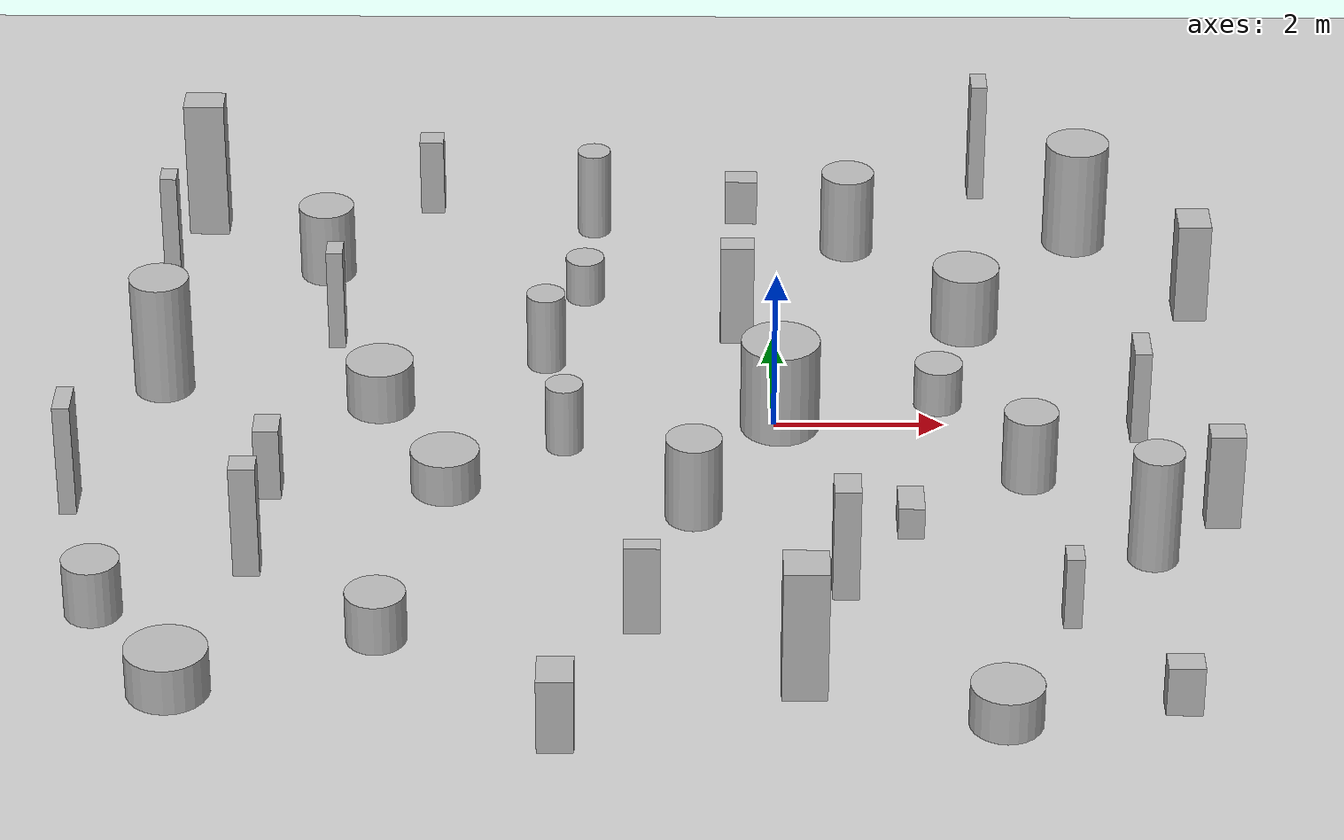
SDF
<sdf version="1.7">
 <world name="default">
  <light name="sun" type="directional">
   <pose>0 0 10 0 -0 0</pose>
   <diffuse>0.8 0.8 0.8 1</diffuse>
   <specular>0.2 0.2 0.2 1</specular>
   <attenuation>
    <range>1000</range>
    <constant>0.9</constant>
    <linear>0.01</linear>
    <quadratic>0.001</quadratic>
   </attenuation>
   <direction>-0.5 0.1 -0.9</direction>
   <spot><inner_angle>0</inner_angle><outer_angle>0</outer_angle><falloff>0</falloff></spot>
  </light>
  <model name="ground_plane">
   <static>1</static>
   <link name="link">
    <collision name="collision">
     <geometry><plane><normal>0 0 1</normal><size>100 100</size></plane></geometry>
     <surface>
      <contact><collide_bitmask>65535</collide_bitmask></contact>
      <friction><ode><mu>100</mu><mu2>50</mu2></ode></friction>
     </surface>
    </collision>
    <visual name="visual">
     <cast_shadows>0</cast_shadows>
     <geometry><plane><normal>0 0 1</normal><size>100 100</size></plane></geometry>
     <material>
      <script><uri>file://media/materials/scripts/gazebo.material</uri><name>Gazebo/Grey</name></script>
     </material>
    </visual>
   </link>
  </model>
  <gravity>0 0 -9.8</gravity>
  <magnetic_field>6e-06 2.3e-05 -4.2e-05</magnetic_field>
  <atmosphere type="adiabatic"/>
  <physics type="ode">
   <max_step_size>0.001</max_step_size>
   <real_time_factor>1</real_time_factor>
   <real_time_update_rate>1000</real_time_update_rate>
   <ode>
    <solver>
     <type>quick</type>
     <iters>50</iters>
     <sor>1.4</sor>
     <use_dynamic_moi_rescaling>0</use_dynamic_moi_rescaling>
    </solver>
    <constraints>
     <cfm>1e-05</cfm>
     <erp>0.2</erp>
     <contact_max_correcting_vel>100</contact_max_correcting_vel>
     <contact_surface_layer>0.001</contact_surface_layer>
    </constraints>
   </ode>
  </physics>
  <scene><ambient>0.4 0.4 0.4 1</ambient><background>0.7 0.7 0.7 1</background><shadows>1</shadows></scene>
  <spherical_coordinates>
   <surface_model>EARTH_WGS84</surface_model>
   <latitude_deg>0</latitude_deg>
   <longitude_deg>0</longitude_deg>
   <elevation>0</elevation>
   <heading_deg>0</heading_deg>
  </spherical_coordinates>
  <model name="cylinder_0_0.7_0.7_2.1">
   <static>1</static>
   <pose>0.97627 4.30379 0.544883 0 -0 0</pose>
   <link name="link">
    <collision name="collision">
     <geometry><cylinder><radius>0.327096</radius><length>1.08977</length></cylinder></geometry>
     <surface><contact><ode><min_depth>0.001</min_depth><max_vel>0</max_vel></ode></contact></surface>
    </collision>
    <visual name="visual">
     <geometry><cylinder><radius>0.327096</radius><length>1.08977</length></cylinder></geometry>
    </visual>
   </link>
  </model>
  <model name="cylinder_1_0.6_0.6_2.9">
   <static>1</static>
   <pose>2.91788 -1.24826 0.463663 0 -0 0</pose>
   <link name="link">
    <collision name="collision">
     <geometry><cylinder><radius>0.315032</radius><length>0.927326</length></cylinder></geometry>
     <surface><contact><ode><min_depth>0.001</min_depth><max_vel>0</max_vel></ode></contact></surface>
    </collision>
    <visual name="visual">
     <geometry><cylinder><radius>0.315032</radius><length>0.927326</length></cylinder></geometry>
    </visual>
   </link>
  </model>
  <model name="cylinder_2_0.4_0.4_2.9">
   <static>1</static>
   <pose>-2.4665 -0.51308 0.425597 0 -0 0</pose>
   <link name="link">
    <collision name="collision">
     <geometry><cylinder><radius>0.221311</radius><length>0.851193</length></cylinder></geometry>
     <surface><contact><ode><min_depth>0.001</min_depth><max_vel>0</max_vel></ode></contact></surface>
    </collision>
    <visual name="visual">
     <geometry><cylinder><radius>0.221311</radius><length>0.851193</length></cylinder></geometry>
    </visual>
   </link>
  </model>
  <model name="cylinder_3_0.9_0.9_2.6">
   <static>1</static>
   <pose>-6.62353 -5.61029 0.278157 0 -0 0</pose>
   <link name="link">
    <collision name="collision">
     <geometry><cylinder><radius>0.461004</radius><length>0.556314</length></cylinder></geometry>
     <surface><contact><ode><min_depth>0.001</min_depth><max_vel>0</max_vel></ode></contact></surface>
    </collision>
    <visual name="visual">
     <geometry><cylinder><radius>0.461004</radius><length>0.556314</length></cylinder></geometry>
    </visual>
   </link>
  </model>
  <model name="cylinder_4_0.5_0.5_2.6">
   <static>1</static>
   <pose>-2.28953 3.06101 0.280529 0 -0 0</pose>
   <link name="link">
    <collision name="collision">
     <geometry><cylinder><radius>0.235482</radius><length>0.561058</length></cylinder></geometry>
     <surface><contact><ode><min_depth>0.001</min_depth><max_vel>0</max_vel></ode></contact></surface>
    </collision>
    <visual name="visual">
     <geometry><cylinder><radius>0.235482</radius><length>0.561058</length></cylinder></geometry>
    </visual>
   </link>
  </model>
  <model name="cylinder_5_0.6_0.6_2.0">
   <static>1</static>
   <pose>-0.959356 -2.04897 0.521848 0 -0 0</pose>
   <link name="link">
    <collision name="collision">
     <geometry><cylinder><radius>0.324399</radius><length>1.0437</length></cylinder></geometry>
     <surface><contact><ode><min_depth>0.001</min_depth><max_vel>0</max_vel></ode></contact></surface>
    </collision>
    <visual name="visual">
     <geometry><cylinder><radius>0.324399</radius><length>1.0437</length></cylinder></geometry>
    </visual>
   </link>
  </model>
  <model name="cylinder_6_0.4_0.4_2.1">
   <static>1</static>
   <pose>-2.20412 4.78437 0.568434 0 -0 0</pose>
   <link name="link">
    <collision name="collision">
     <geometry><cylinder><radius>0.205637</radius><length>1.13687</length></cylinder></geometry>
     <surface><contact><ode><min_depth>0.001</min_depth><max_vel>0</max_vel></ode></contact></surface>
    </collision>
    <visual name="visual">
     <geometry><cylinder><radius>0.205637</radius><length>1.13687</length></cylinder></geometry>
    </visual>
   </link>
  </model>
  <model name="cylinder_7_0.8_0.8_2.9">
   <static>1</static>
   <pose>2.35271 2.24191 0.443748 0 -0 0</pose>
   <link name="link">
    <collision name="collision">
     <geometry><cylinder><radius>0.404546</radius><length>0.887496</length></cylinder></geometry>
     <surface><contact><ode><min_depth>0.001</min_depth><max_vel>0</max_vel></ode></contact></surface>
    </collision>
    <visual name="visual">
     <geometry><cylinder><radius>0.404546</radius><length>0.887496</length></cylinder></geometry>
    </visual>
   </link>
  </model>
  <model name="cylinder_8_0.8_0.8_1.1">
   <static>1</static>
   <pose>-3.81911 -1.45224 0.260225 0 -0 0</pose>
   <link name="link">
    <collision name="collision">
     <geometry><cylinder><radius>0.40003</radius><length>0.520451</length></cylinder></geometry>
     <surface><contact><ode><min_depth>0.001</min_depth><max_vel>0</max_vel></ode></contact></surface>
    </collision>
    <visual name="visual">
     <geometry><cylinder><radius>0.40003</radius><length>0.520451</length></cylinder></geometry>
    </visual>
   </link>
  </model>
  <model name="cylinder_9_0.5_0.5_3.0">
   <static>1</static>
   <pose>-2.72579 1.40393 0.488374 0 -0 0</pose>
   <link name="link">
    <collision name="collision">
     <geometry><cylinder><radius>0.230613</radius><length>0.976748</length></cylinder></geometry>
     <surface><contact><ode><min_depth>0.001</min_depth><max_vel>0</max_vel></ode></contact></surface>
    </collision>
    <visual name="visual">
     <geometry><cylinder><radius>0.230613</radius><length>0.976748</length></cylinder></geometry>
    </visual>
   </link>
  </model>
  <model name="cylinder_10_0.7_0.7_1.5">
   <static>1</static>
   <pose>-4.43923 -4.57596 0.303292 0 -0 0</pose>
   <link name="link">
    <collision name="collision">
     <geometry><cylinder><radius>0.339893</radius><length>0.606583</length></cylinder></geometry>
     <surface><contact><ode><min_depth>0.001</min_depth><max_vel>0</max_vel></ode></contact></surface>
    </collision>
    <visual name="visual">
     <geometry><cylinder><radius>0.339893</radius><length>0.606583</length></cylinder></geometry>
    </visual>
   </link>
  </model>
  <model name="cylinder_11_0.7_0.7_3.0">
   <static>1</static>
   <pose>-5.50653 3.65769 0.476459 0 -0 0</pose>
   <link name="link">
    <collision name="collision">
     <geometry><cylinder><radius>0.340595</radius><length>0.952919</length></cylinder></geometry>
     <surface><contact><ode><min_depth>0.001</min_depth><max_vel>0</max_vel></ode></contact></surface>
    </collision>
    <visual name="visual">
     <geometry><cylinder><radius>0.340595</radius><length>0.952919</length></cylinder></geometry>
    </visual>
   </link>
  </model>
  <model name="cylinder_12_0.6_0.6_1.1">
   <static>1</static>
   <pose>1.94826 0.506577 0.259188 0 -0 0</pose>
   <link name="link">
    <collision name="collision">
     <geometry><cylinder><radius>0.284842</radius><length>0.578376</length></cylinder></geometry>
     <surface><contact><ode><min_depth>0.001</min_depth><max_vel>0</max_vel></ode></contact></surface>
    </collision>
    <visual name="visual">
     <geometry><cylinder><radius>0.284842</radius><length>0.578376</length></cylinder></geometry>
    </visual>
   </link>
  </model>
  <model name="cylinder_13_0.6_0.6_1.6">
   <static>1</static>
   <pose>-7.59607 -4.0772 0.349832 0 -0 0</pose>
   <link name="link">
    <collision name="collision">
     <geometry><cylinder><radius>0.324279</radius><length>0.696636</length></cylinder></geometry>
     <surface><contact><ode><min_depth>0.001</min_depth><max_vel>0</max_vel></ode></contact></surface>
    </collision>
    <visual name="visual">
     <geometry><cylinder><radius>0.324279</radius><length>0.696636</length></cylinder></geometry>
    </visual>
   </link>
  </model>
  <model name="cylinder_14_0.7_0.7_1.5">
   <static>1</static>
   <pose>-7.27922 0.815102 0.753895 0 -0 0</pose>
   <link name="link">
    <collision name="collision">
     <geometry><cylinder><radius>0.356974</radius><length>1.50779</length></cylinder></geometry>
     <surface><contact><ode><min_depth>0.001</min_depth><max_vel>0</max_vel></ode></contact></surface>
    </collision>
    <visual name="visual">
     <geometry><cylinder><radius>0.356974</radius><length>1.50779</length></cylinder></geometry>
    </visual>
   </link>
  </model>
  <model name="cylinder_15_0.8_0.8_1.6">
   <static>1</static>
   <pose>-4.66936 0.389155 0.318569 0 -0 0</pose>
   <link name="link">
    <collision name="collision">
     <geometry><cylinder><radius>0.400223</radius><length>0.637138</length></cylinder></geometry>
     <surface><contact><ode><min_depth>0.001</min_depth><max_vel>0</max_vel></ode></contact></surface>
    </collision>
    <visual name="visual">
     <geometry><cylinder><radius>0.400223</radius><length>0.637138</length></cylinder></geometry>
    </visual>
   </link>
  </model>
  <model name="cylinder_16_0.8_0.8_1.0">
   <static>1</static>
   <pose>2.36555 -6.15914 0.246955 0 -0 0</pose>
   <link name="link">
    <collision name="collision">
     <geometry><cylinder><radius>0.403345</radius><length>0.509391</length></cylinder></geometry>
     <surface><contact><ode><min_depth>0.001</min_depth><max_vel>0</max_vel></ode></contact></surface>
    </collision>
    <visual name="visual">
     <geometry><cylinder><radius>0.403345</radius><length>0.509391</length></cylinder></geometry>
    </visual>
   </link>
  </model>
  <model name="cylinder_17_0.6_0.6_2.4">
   <static>1</static>
   <pose>4.21066 -2.91097 0.699479 0 -0 0</pose>
   <link name="link">
    <collision name="collision">
     <geometry><cylinder><radius>0.289231</radius><length>1.39896</length></cylinder></geometry>
     <surface><contact><ode><min_depth>0.001</min_depth><max_vel>0</max_vel></ode></contact></surface>
    </collision>
    <visual name="visual">
     <geometry><cylinder><radius>0.289231</radius><length>1.39896</length></cylinder></geometry>
    </visual>
   </link>
  </model>
  <model name="cylinder_18_0.9_0.9_2.2">
   <static>1</static>
   <pose>0.059637 -0.036896 0.581273 0 -0 0</pose>
   <link name="link">
    <collision name="collision">
     <geometry><cylinder><radius>0.464521</radius><length>1.16255</length></cylinder></geometry>
     <surface><contact><ode><min_depth>0.001</min_depth><max_vel>0</max_vel></ode></contact></surface>
    </collision>
    <visual name="visual">
     <geometry><cylinder><radius>0.464521</radius><length>1.16255</length></cylinder></geometry>
    </visual>
   </link>
  </model>
  <model name="cylinder_19_0.8_0.8_2.9">
   <static>1</static>
   <pose>3.85063 4.50509 0.706084 0 -0 0</pose>
   <link name="link">
    <collision name="collision">
     <geometry><cylinder><radius>0.393197</radius><length>1.41217</length></cylinder></geometry>
     <surface><contact><ode><min_depth>0.001</min_depth><max_vel>0</max_vel></ode></contact></surface>
    </collision>
    <visual name="visual">
     <geometry><cylinder><radius>0.393197</radius><length>1.41217</length></cylinder></geometry>
    </visual>
   </link>
  </model>
  <model name="box_0_0.2_0.3_1.9">
   <static>1</static>
   <pose>3.20347 -4.19845 0.45 0 -0 0</pose>
   <link name="link">
    <collision name="collision">
     <geometry><box><size>0.2 0.3 0.9</size></box></geometry>
     <surface><contact><ode><min_depth>0.001</min_depth><max_vel>0</max_vel></ode></contact></surface>
    </collision>
    <visual name="visual"><geometry><box><size>0.2 0.3 0.9</size></box></geometry></visual>
   </link>
  </model>
  <model name="box_1_0.2_0.5_2.4">
   <static>1</static>
   <pose>-8.11574 -1.78724 0.7 0 -0 0</pose>
   <link name="link">
    <collision name="collision">
     <geometry><box><size>0.2 0.5 1.4</size></box></geometry>
     <surface><contact><ode><min_depth>0.001</min_depth><max_vel>0</max_vel></ode></contact></surface>
    </collision>
    <visual name="visual"><geometry><box><size>0.2 0.5 1.4</size></box></geometry></visual>
   </link>
  </model>
  <model name="box_2_0.2_0.4_2.7">
   <static>1</static>
   <pose>2.67715 5.85218 0.8 0 -0 0</pose>
   <link name="link">
    <collision name="collision">
     <geometry><box><size>0.2 0.4 1.6</size></box></geometry>
     <surface><contact><ode><min_depth>0.001</min_depth><max_vel>0</max_vel></ode></contact></surface>
    </collision>
    <visual name="visual"><geometry><box><size>0.2 0.4 1.6</size></box></geometry></visual>
   </link>
  </model>
  <model name="box_3_0.4_0.5_1.9">
   <static>1</static>
   <pose>-2.42992 -6.50794 0.45 0 -0 0</pose>
   <link name="link">
    <collision name="collision">
     <geometry><box><size>0.4 0.5 0.9</size></box></geometry>
     <surface><contact><ode><min_depth>0.001</min_depth><max_vel>0</max_vel></ode></contact></surface>
    </collision>
    <visual name="visual"><geometry><box><size>0.4 0.5 0.9</size></box></geometry></visual>
   </link>
  </model>
  <model name="box_4_0.3_0.5_1.4">
   <static>1</static>
   <pose>1.50729 -2.2719 0.2 0 -0 0</pose>
   <link name="link">
    <collision name="collision">
     <geometry><box><size>0.3 0.5 0.4</size></box></geometry>
     <surface><contact><ode><min_depth>0.001</min_depth><max_vel>0</max_vel></ode></contact></surface>
    </collision>
    <visual name="visual"><geometry><box><size>0.3 0.5 0.4</size></box></geometry></visual>
   </link>
  </model>
  <model name="box_5_0.4_0.3_2.2">
   <static>1</static>
   <pose>5.06501 -2.11585 0.6 0 -0 0</pose>
   <link name="link">
    <collision name="collision">
     <geometry><box><size>0.4 0.3 1.2</size></box></geometry>
     <surface><contact><ode><min_depth>0.001</min_depth><max_vel>0</max_vel></ode></contact></surface>
    </collision>
    <visual name="visual"><geometry><box><size>0.4 0.3 1.2</size></box></geometry></visual>
   </link>
  </model>
  <model name="box_6_0.3_0.3_2.0">
   <static>1</static>
   <pose>-4.27607 5.39112 0.5 0 -0 0</pose>
   <link name="link">
    <collision name="collision">
     <geometry><box><size>0.3 0.3 1</size></box></geometry>
     <surface><contact><ode><min_depth>0.001</min_depth><max_vel>0</max_vel></ode></contact></surface>
    </collision>
    <visual name="visual"><geometry><box><size>0.3 0.3 1</size></box></geometry></visual>
   </link>
  </model>
  <model name="box_7_0.3_0.3_2.4">
   <static>1</static>
   <pose>-5.96619 -3.1935 0.7 0 -0 0</pose>
   <link name="link">
    <collision name="collision">
     <geometry><box><size>0.3 0.3 1.4</size></box></geometry>
     <surface><contact><ode><min_depth>0.001</min_depth><max_vel>0</max_vel></ode></contact></surface>
    </collision>
    <visual name="visual"><geometry><box><size>0.3 0.3 1.4</size></box></geometry></visual>
   </link>
  </model>
  <model name="box_8_0.4_0.3_1.4">
   <static>1</static>
   <pose>-0.345159 5.1113 0.3 0 -0 0</pose>
   <link name="link">
    <collision name="collision">
     <geometry><box><size>0.4 0.3 0.6</size></box></geometry>
     <surface><contact><ode><min_depth>0.001</min_depth><max_vel>0</max_vel></ode></contact></surface>
    </collision>
    <visual name="visual"><geometry><box><size>0.4 0.3 0.6</size></box></geometry></visual>
   </link>
  </model>
  <model name="box_9_0.3_0.4_1.9">
   <static>1</static>
   <pose>-5.8506 -1.50629 0.45 0 -0 0</pose>
   <link name="link">
    <collision name="collision">
     <geometry><box><size>0.3 0.4 0.9</size></box></geometry>
     <surface><contact><ode><min_depth>0.001</min_depth><max_vel>0</max_vel></ode></contact></surface>
    </collision>
    <visual name="visual"><geometry><box><size>0.3 0.4 0.9</size></box></geometry></visual>
   </link>
  </model>
  <model name="box_10_0.4_0.3_1.3">
   <static>1</static>
   <pose>4.27609 -5.86904 0.3 0 -0 0</pose>
   <link name="link">
    <collision name="collision">
     <geometry><box><size>0.4 0.3 0.6</size></box></geometry>
     <surface><contact><ode><min_depth>0.001</min_depth><max_vel>0</max_vel></ode></contact></surface>
    </collision>
    <visual name="visual"><geometry><box><size>0.4 0.3 0.6</size></box></geometry></visual>
   </link>
  </model>
  <model name="box_11_0.2_0.5_1.2">
   <static>1</static>
   <pose>4.26687 -0.148375 0.600294 0 -0 0</pose>
   <link name="link">
    <collision name="collision">
     <geometry><box><size>0.2 0.5 1.2</size></box></geometry>
     <surface><contact><ode><min_depth>0.001</min_depth><max_vel>0</max_vel></ode></contact></surface>
    </collision>
    <visual name="visual"><geometry><box><size>0.2 0.5 1.2</size></box></geometry></visual>
   </link>
  </model>
  <model name="box_12_0.5_0.4_2.9">
   <static>1</static>
   <pose>-7.08539 4.86181 0.9 0 -0 0</pose>
   <link name="link">
    <collision name="collision">
     <geometry><box><size>0.5 0.4 1.8</size></box></geometry>
     <surface><contact><ode><min_depth>0.001</min_depth><max_vel>0</max_vel></ode></contact></surface>
    </collision>
    <visual name="visual"><geometry><box><size>0.5 0.4 1.8</size></box></geometry></visual>
   </link>
  </model>
  <model name="box_13_0.5_0.5_2.7">
   <static>1</static>
   <pose>0.22638 -5.51366 0.8 0 -0 0</pose>
   <link name="link">
    <collision name="collision">
     <geometry><box><size>0.5 0.5 1.6</size></box></geometry>
     <surface><contact><ode><min_depth>0.001</min_depth><max_vel>0</max_vel></ode></contact></surface>
    </collision>
    <visual name="visual"><geometry><box><size>0.5 0.5 1.6</size></box></geometry></visual>
   </link>
  </model>
  <model name="box_14_0.4_0.2_1.1">
   <static>1</static>
   <pose>-1.53158 -4.37715 0.553427 0 -0 0</pose>
   <link name="link">
    <collision name="collision">
     <geometry><box><size>0.4 0.2 1.1</size></box></geometry>
     <surface><contact><ode><min_depth>0.001</min_depth><max_vel>0</max_vel></ode></contact></surface>
    </collision>
    <visual name="visual"><geometry><box><size>0.4 0.2 1.1</size></box></geometry></visual>
   </link>
  </model>
  <model name="box_15_0.2_0.3_1.3">
   <static>1</static>
   <pose>-5.28157 1.97269 0.631483 0 -0 0</pose>
   <link name="link">
    <collision name="collision">
     <geometry><box><size>0.2 0.3 1.3</size></box></geometry>
     <surface><contact><ode><min_depth>0.001</min_depth><max_vel>0</max_vel></ode></contact></surface>
    </collision>
    <visual name="visual"><geometry><box><size>0.2 0.3 1.3</size></box></geometry></visual>
   </link>
  </model>
  <model name="box_16_0.4_0.5_1.3">
   <static>1</static>
   <pose>5.13557 2.72122 0.660539 0 -0 0</pose>
   <link name="link">
    <collision name="collision">
     <geometry><box><size>0.4 0.5 1.3</size></box></geometry>
     <surface><contact><ode><min_depth>0.001</min_depth><max_vel>0</max_vel></ode></contact></surface>
    </collision>
    <visual name="visual"><geometry><box><size>0.4 0.5 1.3</size></box></geometry></visual>
   </link>
  </model>
  <model name="box_17_0.2_0.3_1.7">
   <static>1</static>
   <pose>-7.36386 3.05475 0.856707 0 -0 0</pose>
   <link name="link">
    <collision name="collision">
     <geometry><box><size>0.2 0.3 1.7</size></box></geometry>
     <surface><contact><ode><min_depth>0.001</min_depth><max_vel>0</max_vel></ode></contact></surface>
    </collision>
    <visual name="visual"><geometry><box><size>0.2 0.3 1.7</size></box></geometry></visual>
   </link>
  </model>
  <model name="box_18_0.4_0.3_1.3">
   <static>1</static>
   <pose>-0.426971 2.04667 0.662954 0 -0 0</pose>
   <link name="link">
    <collision name="collision">
     <geometry><box><size>0.4 0.3 1.3</size></box></geometry>
     <surface><contact><ode><min_depth>0.001</min_depth><max_vel>0</max_vel></ode></contact></surface>
    </collision>
    <visual name="visual"><geometry><box><size>0.4 0.3 1.3</size></box></geometry></visual>
   </link>
  </model>
  <model name="box_19_0.3_0.4_1.6">
   <static>1</static>
   <pose>0.727945 -3.57836 0.7 0 -0 0</pose>
   <link name="link">
    <collision name="collision">
     <geometry><box><size>0.3 0.4 1.4</size></box></geometry>
     <surface><contact><ode><min_depth>0.001</min_depth><max_vel>0</max_vel></ode></contact></surface>
    </collision>
    <visual name="visual"><geometry><box><size>0.3 0.4 1.4</size></box></geometry></visual>
   </link>
  </model>
 </world>
</sdf>
